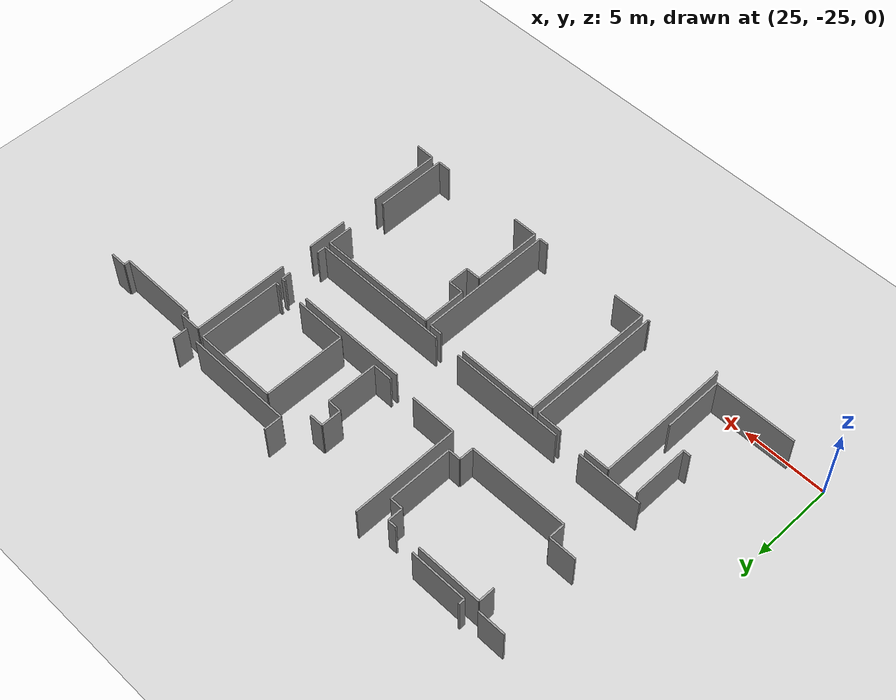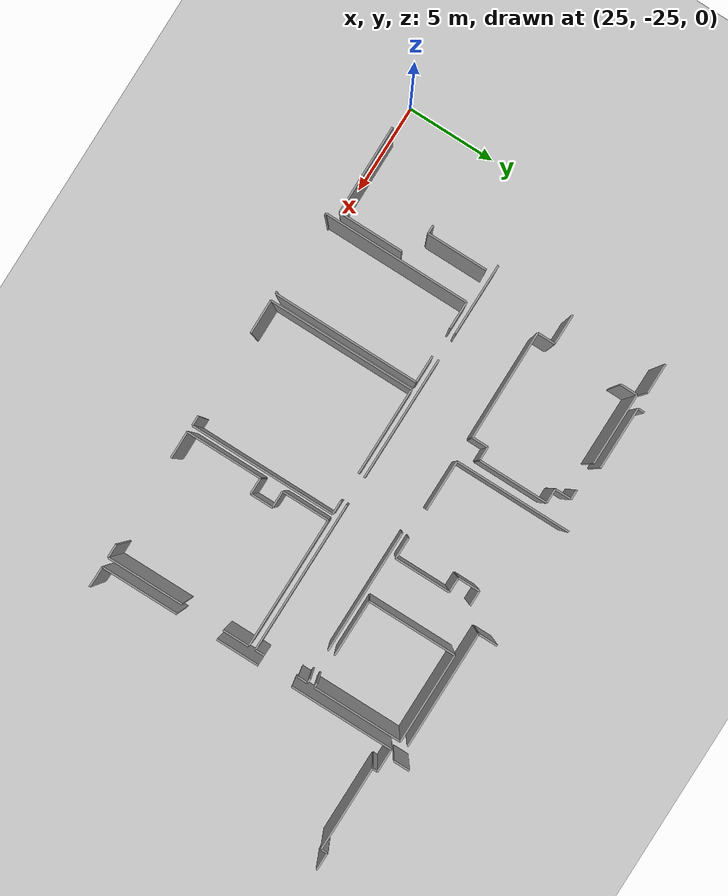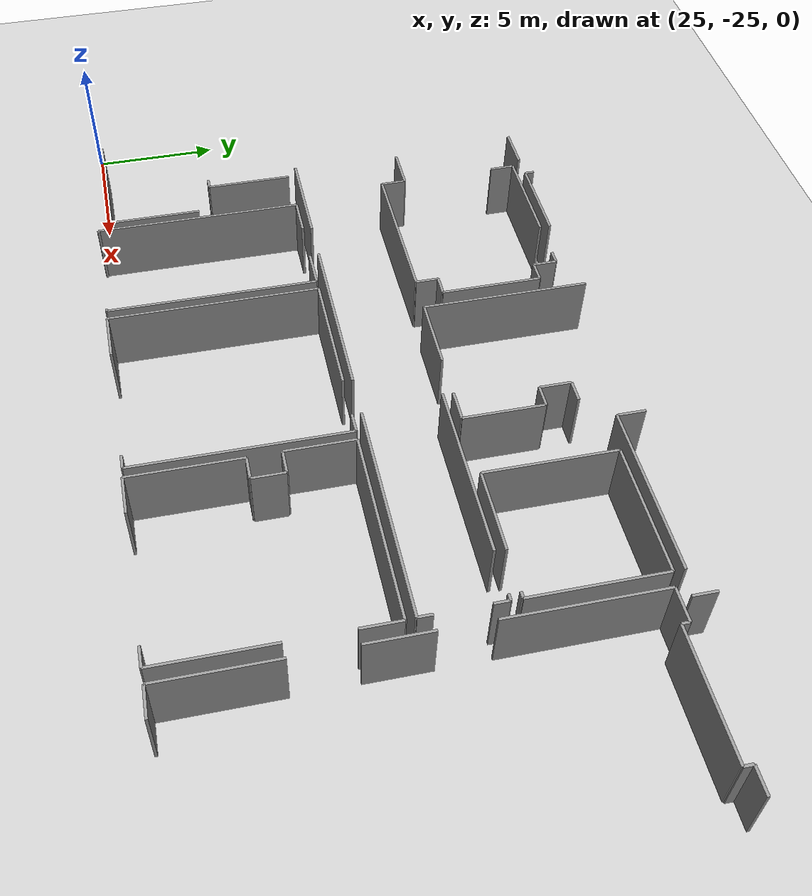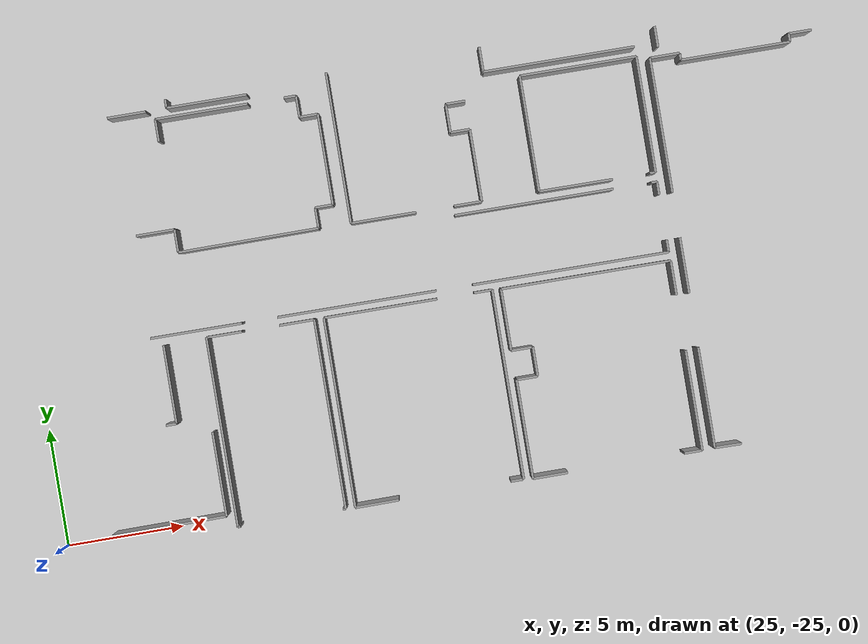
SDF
<sdf version="1.6">
 <world name="default">
  <model name="ground_plane">
   <static>1</static>
   <link name="link">
    <collision name="collision">
     <geometry><plane><normal>0 0 1</normal><size>100 100</size></plane></geometry>
     <surface><friction><ode><mu>100</mu><mu2>50</mu2></ode></friction></surface>
    </collision>
    <visual name="visual">
     <cast_shadows>0</cast_shadows>
     <geometry><plane><normal>0 0 1</normal><size>100 100</size></plane></geometry>
     <material>
      <script><uri>file://media/materials/scripts/gazebo.material</uri><name>Gazebo/Grey</name></script>
     </material>
    </visual>
   </link>
  </model>
  <model name="0510035342_A_40_1_101">
   <static>1</static>
   <link name="Wall_375">
    <collision name="Wall_375_Collision">
     <geometry><box><size>6.4992888347 0.1 2.5</size></box></geometry>
     <pose>3.24964441735 0 1.25 0 0 0</pose>
    </collision>
    <visual name="Wall_375_Visual">
     <pose>3.24964441735 0 1.25 0 0 0</pose>
     <geometry><box><size>6.4992888347 0.1 2.5</size></box></geometry>
     <material>
      <script><uri>file://media/materials/scripts/gazebo.material</uri><name>Gazebo/Grey</name></script>
      <ambient>1 1 1 1</ambient>
     </material>
    </visual>
    <pose>168.106268414 -33.2568830641 0 0 0 3.14159265359</pose>
   </link>
   <link name="Wall_376">
    <collision name="Wall_376_Collision">
     <geometry><box><size>1.07462155847 0.1 2.5</size></box></geometry>
     <pose>0.537310779234 0 1.25 0 0 0</pose>
    </collision>
    <visual name="Wall_376_Visual">
     <pose>0.537310779234 0 1.25 0 0 0</pose>
     <geometry><box><size>1.07462155847 0.1 2.5</size></box></geometry>
     <material>
      <script><uri>file://media/materials/scripts/gazebo.material</uri><name>Gazebo/Grey</name></script>
      <ambient>1 1 1 1</ambient>
     </material>
    </visual>
    <pose>161.606979579 -33.2568830641 0 0 0 1.57079632679</pose>
   </link>
   <link name="Wall_379">
    <collision name="Wall_379_Collision">
     <geometry><box><size>0.838413085441 0.1 2.5</size></box></geometry>
     <pose>0.419206542721 0 1.25 0 0 0</pose>
    </collision>
    <visual name="Wall_379_Visual">
     <pose>0.419206542721 0 1.25 0 0 0</pose>
     <geometry><box><size>0.838413085441 0.1 2.5</size></box></geometry>
     <material>
      <script><uri>file://media/materials/scripts/gazebo.material</uri><name>Gazebo/Grey</name></script>
      <ambient>1 1 1 1</ambient>
     </material>
    </visual>
    <pose>160.648430357 -34.3472518541 0 0 0 3.14159265359</pose>
   </link>
   <link name="Wall_380">
    <collision name="Wall_380_Collision">
     <geometry><box><size>1.2122828406 0.1 2.5</size></box></geometry>
     <pose>0.606141420299 0 1.25 0 0 0</pose>
    </collision>
    <visual name="Wall_380_Visual">
     <pose>0.606141420299 0 1.25 0 0 0</pose>
     <geometry><box><size>1.2122828406 0.1 2.5</size></box></geometry>
     <material>
      <script><uri>file://media/materials/scripts/gazebo.material</uri><name>Gazebo/Grey</name></script>
      <ambient>1 1 1 1</ambient>
     </material>
    </visual>
    <pose>159.810017271 -34.3472518541 0 0 0 -1.57079632679</pose>
   </link>
   <link name="Wall_381">
    <collision name="Wall_381_Collision">
     <geometry><box><size>0.833333333333 0.1 2.5</size></box></geometry>
     <pose>0.416666666667 0 1.25 0 0 0</pose>
    </collision>
    <visual name="Wall_381_Visual">
     <pose>0.416666666667 0 1.25 0 0 0</pose>
     <geometry><box><size>0.833333333333 0.1 2.5</size></box></geometry>
     <material>
      <script><uri>file://media/materials/scripts/gazebo.material</uri><name>Gazebo/Grey</name></script>
      <ambient>1 1 1 1</ambient>
     </material>
    </visual>
    <pose>159.810017271 -35.5595346947 0 0 0 0.0</pose>
   </link>
   <link name="Wall_382">
    <collision name="Wall_382_Collision">
     <geometry><box><size>3.09890277354 0.1 2.5</size></box></geometry>
     <pose>1.54945138677 0 1.25 0 0 0</pose>
    </collision>
    <visual name="Wall_382_Visual">
     <pose>1.54945138677 0 1.25 0 0 0</pose>
     <geometry><box><size>3.09890277354 0.1 2.5</size></box></geometry>
     <material>
      <script><uri>file://media/materials/scripts/gazebo.material</uri><name>Gazebo/Grey</name></script>
      <ambient>1 1 1 1</ambient>
     </material>
    </visual>
    <pose>160.643350604 -35.5595346947 0 0 0 -1.57079632679</pose>
   </link>
   <link name="Wall_383">
    <collision name="Wall_383_Collision">
     <geometry><box><size>1.18866199329 0.1 2.5</size></box></geometry>
     <pose>0.594330996647 0 1.25 0 0 0</pose>
    </collision>
    <visual name="Wall_383_Visual">
     <pose>0.594330996647 0 1.25 0 0 0</pose>
     <geometry><box><size>1.18866199329 0.1 2.5</size></box></geometry>
     <material>
      <script><uri>file://media/materials/scripts/gazebo.material</uri><name>Gazebo/Grey</name></script>
      <ambient>1 1 1 1</ambient>
     </material>
    </visual>
    <pose>160.643350604 -38.6584374683 0 0 0 3.14159265359</pose>
   </link>
   <link name="Wall_384">
    <collision name="Wall_384_Collision">
     <geometry><box><size>2.80021334959 0.1 2.5</size></box></geometry>
     <pose>1.40010667479 0 1.25 0 0 0</pose>
    </collision>
    <visual name="Wall_384_Visual">
     <pose>1.40010667479 0 1.25 0 0 0</pose>
     <geometry><box><size>2.80021334959 0.1 2.5</size></box></geometry>
     <material>
      <script><uri>file://media/materials/scripts/gazebo.material</uri><name>Gazebo/Grey</name></script>
      <ambient>1 1 1 1</ambient>
     </material>
    </visual>
    <pose>157.827136036 -38.6584374683 0 0 0 3.14159265359</pose>
   </link>
   <link name="Wall_385">
    <collision name="Wall_385_Collision">
     <geometry><box><size>6.4616986691 0.1 2.5</size></box></geometry>
     <pose>3.23084933455 0 1.25 0 0 0</pose>
    </collision>
    <visual name="Wall_385_Visual">
     <pose>3.23084933455 0 1.25 0 0 0</pose>
     <geometry><box><size>6.4616986691 0.1 2.5</size></box></geometry>
     <material>
      <script><uri>file://media/materials/scripts/gazebo.material</uri><name>Gazebo/Grey</name></script>
      <ambient>1 1 1 1</ambient>
     </material>
    </visual>
    <pose>155.026922686 -38.6584374683 0 0 0 1.57079632679</pose>
   </link>
   <link name="Wall_389">
    <collision name="Wall_389_Collision">
     <geometry><box><size>3.44788174337 0.1 2.5</size></box></geometry>
     <pose>1.72394087169 0 1.25 0 0 0</pose>
    </collision>
    <visual name="Wall_389_Visual">
     <pose>1.72394087169 0 1.25 0 0 0</pose>
     <geometry><box><size>3.44788174337 0.1 2.5</size></box></geometry>
     <material>
      <script><uri>file://media/materials/scripts/gazebo.material</uri><name>Gazebo/Grey</name></script>
      <ambient>1 1 1 1</ambient>
     </material>
    </visual>
    <pose>151.563039724 -32.5596870873 0 0 0 3.14159265359</pose>
   </link>
   <link name="Wall_390">
    <collision name="Wall_390_Collision">
     <geometry><box><size>0.367520065021 0.1 2.5</size></box></geometry>
     <pose>0.18376003251 0 1.25 0 0 0</pose>
    </collision>
    <visual name="Wall_390_Visual">
     <pose>0.18376003251 0 1.25 0 0 0</pose>
     <geometry><box><size>0.367520065021 0.1 2.5</size></box></geometry>
     <material>
      <script><uri>file://media/materials/scripts/gazebo.material</uri><name>Gazebo/Grey</name></script>
      <ambient>1 1 1 1</ambient>
     </material>
    </visual>
    <pose>148.11515798 -32.5596870873 0 0 0 1.57079632679</pose>
   </link>
   <link name="Wall_393">
    <collision name="Wall_393_Collision">
     <geometry><box><size>1.66006298893 0.1 2.5</size></box></geometry>
     <pose>0.830031494463 0 1.25 0 0 0</pose>
    </collision>
    <visual name="Wall_393_Visual">
     <pose>0.830031494463 0 1.25 0 0 0</pose>
     <geometry><box><size>1.66006298893 0.1 2.5</size></box></geometry>
     <material>
      <script><uri>file://media/materials/scripts/gazebo.material</uri><name>Gazebo/Grey</name></script>
      <ambient>1 1 1 1</ambient>
     </material>
    </visual>
    <pose>147.225693386 -32.5767042568 0 0 0 3.14159265359</pose>
   </link>
   <link name="Wall_397">
    <collision name="Wall_397_Collision">
     <geometry><box><size>0.979630194047 0.1 2.5</size></box></geometry>
     <pose>0.489815097023 0 1.25 0 0 0</pose>
    </collision>
    <visual name="Wall_397_Visual">
     <pose>0.489815097023 0 1.25 0 0 0</pose>
     <geometry><box><size>0.979630194047 0.1 2.5</size></box></geometry>
     <material>
      <script><uri>file://media/materials/scripts/gazebo.material</uri><name>Gazebo/Grey</name></script>
      <ambient>1 1 1 1</ambient>
     </material>
    </visual>
    <pose>147.604642893 -38.6777405263 0 0 0 1.57079632679</pose>
   </link>
   <link name="Wall_398">
    <collision name="Wall_398_Collision">
     <geometry><box><size>1.65168139795 0.1 2.5</size></box></geometry>
     <pose>0.825840698974 0 1.25 0 0 0</pose>
    </collision>
    <visual name="Wall_398_Visual">
     <pose>0.825840698974 0 1.25 0 0 0</pose>
     <geometry><box><size>1.65168139795 0.1 2.5</size></box></geometry>
     <material>
      <script><uri>file://media/materials/scripts/gazebo.material</uri><name>Gazebo/Grey</name></script>
      <ambient>1 1 1 1</ambient>
     </material>
    </visual>
    <pose>147.604642893 -37.6981103322 0 0 0 3.14159265359</pose>
   </link>
   <link name="Wall_401">
    <collision name="Wall_401_Collision">
     <geometry><box><size>0.96007314843 0.1 2.5</size></box></geometry>
     <pose>0.480036574215 0 1.25 0 0 0</pose>
    </collision>
    <visual name="Wall_401_Visual">
     <pose>0.480036574215 0 1.25 0 0 0</pose>
     <geometry><box><size>0.96007314843 0.1 2.5</size></box></geometry>
     <material>
      <script><uri>file://media/materials/scripts/gazebo.material</uri><name>Gazebo/Grey</name></script>
      <ambient>1 1 1 1</ambient>
     </material>
    </visual>
    <pose>147.566290765 -33.9147109621 0 0 0 1.57079632679</pose>
   </link>
   <link name="Wall_402">
    <collision name="Wall_402_Collision">
     <geometry><box><size>3.9754139998 0.1 2.5</size></box></geometry>
     <pose>1.9877069999 0 1.25 0 0 0</pose>
    </collision>
    <visual name="Wall_402_Visual">
     <pose>1.9877069999 0 1.25 0 0 0</pose>
     <geometry><box><size>3.9754139998 0.1 2.5</size></box></geometry>
     <material>
      <script><uri>file://media/materials/scripts/gazebo.material</uri><name>Gazebo/Grey</name></script>
      <ambient>1 1 1 1</ambient>
     </material>
    </visual>
    <pose>147.566290765 -32.9546378137 0 0 0 0.0</pose>
   </link>
   <link name="Wall_403">
    <collision name="Wall_403_Collision">
     <geometry><box><size>0.525754343188 0.1 2.5</size></box></geometry>
     <pose>0.262877171594 0 1.25 0 0 0</pose>
    </collision>
    <visual name="Wall_403_Visual">
     <pose>0.262877171594 0 1.25 0 0 0</pose>
     <geometry><box><size>0.525754343188 0.1 2.5</size></box></geometry>
     <material>
      <script><uri>file://media/materials/scripts/gazebo.material</uri><name>Gazebo/Grey</name></script>
      <ambient>1 1 1 1</ambient>
     </material>
    </visual>
    <pose>153.082901554 -32.9546378137 0 0 0 0.0</pose>
   </link>
   <link name="Wall_404">
    <collision name="Wall_404_Collision">
     <geometry><box><size>0.912323478614 0.1 2.5</size></box></geometry>
     <pose>0.456161739307 0 1.25 0 0 0</pose>
    </collision>
    <visual name="Wall_404_Visual">
     <pose>0.456161739307 0 1.25 0 0 0</pose>
     <geometry><box><size>0.912323478614 0.1 2.5</size></box></geometry>
     <material>
      <script><uri>file://media/materials/scripts/gazebo.material</uri><name>Gazebo/Grey</name></script>
      <ambient>1 1 1 1</ambient>
     </material>
    </visual>
    <pose>153.608655898 -32.9546378137 0 0 0 -1.57079632679</pose>
   </link>
   <link name="Wall_405">
    <collision name="Wall_405_Collision">
     <geometry><box><size>0.788631514782 0.1 2.5</size></box></geometry>
     <pose>0.394315757391 0 1.25 0 0 0</pose>
    </collision>
    <visual name="Wall_405_Visual">
     <pose>0.394315757391 0 1.25 0 0 0</pose>
     <geometry><box><size>0.788631514782 0.1 2.5</size></box></geometry>
     <material>
      <script><uri>file://media/materials/scripts/gazebo.material</uri><name>Gazebo/Grey</name></script>
      <ambient>1 1 1 1</ambient>
     </material>
    </visual>
    <pose>153.608655898 -33.8669612923 0 0 0 0.0</pose>
   </link>
   <link name="Wall_406">
    <collision name="Wall_406_Collision">
     <geometry><box><size>3.89261404043 0.1 2.5</size></box></geometry>
     <pose>1.94630702022 0 1.25 0 0 0</pose>
    </collision>
    <visual name="Wall_406_Visual">
     <pose>1.94630702022 0 1.25 0 0 0</pose>
     <geometry><box><size>3.89261404043 0.1 2.5</size></box></geometry>
     <material>
      <script><uri>file://media/materials/scripts/gazebo.material</uri><name>Gazebo/Grey</name></script>
      <ambient>1 1 1 1</ambient>
     </material>
    </visual>
    <pose>154.397287412 -33.8669612923 0 0 0 -1.57079632679</pose>
   </link>
   <link name="Wall_407">
    <collision name="Wall_407_Collision">
     <geometry><box><size>0.761200853398 0.1 2.5</size></box></geometry>
     <pose>0.380600426699 0 1.25 0 0 0</pose>
    </collision>
    <visual name="Wall_407_Visual">
     <pose>0.380600426699 0 1.25 0 0 0</pose>
     <geometry><box><size>0.761200853398 0.1 2.5</size></box></geometry>
     <material>
      <script><uri>file://media/materials/scripts/gazebo.material</uri><name>Gazebo/Grey</name></script>
      <ambient>1 1 1 1</ambient>
     </material>
    </visual>
    <pose>154.397287412 -37.7595753327 0 0 0 3.14159265359</pose>
   </link>
   <link name="Wall_408">
    <collision name="Wall_408_Collision">
     <geometry><box><size>0.883622879204 0.1 2.5</size></box></geometry>
     <pose>0.441811439602 0 1.25 0 0 0</pose>
    </collision>
    <visual name="Wall_408_Visual">
     <pose>0.441811439602 0 1.25 0 0 0</pose>
     <geometry><box><size>0.883622879204 0.1 2.5</size></box></geometry>
     <material>
      <script><uri>file://media/materials/scripts/gazebo.material</uri><name>Gazebo/Grey</name></script>
      <ambient>1 1 1 1</ambient>
     </material>
    </visual>
    <pose>153.636086559 -37.7595753327 0 0 0 -1.57079632679</pose>
   </link>
   <link name="Wall_409">
    <collision name="Wall_409_Collision">
     <geometry><box><size>6.03154257733 0.1 2.5</size></box></geometry>
     <pose>3.01577128867 0 1.25 0 0 0</pose>
    </collision>
    <visual name="Wall_409_Visual">
     <pose>3.01577128867 0 1.25 0 0 0</pose>
     <geometry><box><size>6.03154257733 0.1 2.5</size></box></geometry>
     <material>
      <script><uri>file://media/materials/scripts/gazebo.material</uri><name>Gazebo/Grey</name></script>
      <ambient>1 1 1 1</ambient>
     </material>
    </visual>
    <pose>153.636086559 -38.6431982119 0 0 0 -3.135865677</pose>
   </link>
   <link name="Wall_418">
    <collision name="Wall_418_Collision">
     <geometry><box><size>6.81067763893 0.1 2.5</size></box></geometry>
     <pose>3.40533881947 0 1.25 0 0 0</pose>
    </collision>
    <visual name="Wall_418_Visual">
     <pose>3.40533881947 0 1.25 0 0 0</pose>
     <geometry><box><size>6.81067763893 0.1 2.5</size></box></geometry>
     <material>
      <script><uri>file://media/materials/scripts/gazebo.material</uri><name>Gazebo/Grey</name></script>
      <ambient>1 1 1 1</ambient>
     </material>
    </visual>
    <pose>159.414050594 -39.051864269 0 0 0 0.0</pose>
   </link>
   <link name="Wall_419">
    <collision name="Wall_419_Collision">
     <geometry><box><size>0.249161840902 0.1 2.5</size></box></geometry>
     <pose>0.124580920451 0 1.25 0 0 0</pose>
    </collision>
    <visual name="Wall_419_Visual">
     <pose>0.124580920451 0 1.25 0 0 0</pose>
     <geometry><box><size>0.249161840902 0.1 2.5</size></box></geometry>
     <material>
      <script><uri>file://media/materials/scripts/gazebo.material</uri><name>Gazebo/Grey</name></script>
      <ambient>1 1 1 1</ambient>
     </material>
    </visual>
    <pose>167.850502895 -39.051864269 0 0 0 0.0</pose>
   </link>
   <link name="Wall_420">
    <collision name="Wall_420_Collision">
     <geometry><box><size>0.566392360053 0.1 2.5</size></box></geometry>
     <pose>0.283196180026 0 1.25 0 0 0</pose>
    </collision>
    <visual name="Wall_420_Visual">
     <pose>0.283196180026 0 1.25 0 0 0</pose>
     <geometry><box><size>0.566392360053 0.1 2.5</size></box></geometry>
     <material>
      <script><uri>file://media/materials/scripts/gazebo.material</uri><name>Gazebo/Grey</name></script>
      <ambient>1 1 1 1</ambient>
     </material>
    </visual>
    <pose>168.099664736 -39.051864269 0 0 0 -1.57079632679</pose>
   </link>
   <link name="Wall_421">
    <collision name="Wall_421_Collision">
     <geometry><box><size>0.537691760642 0.1 2.5</size></box></geometry>
     <pose>0.268845880321 0 1.25 0 0 0</pose>
    </collision>
    <visual name="Wall_421_Visual">
     <pose>0.268845880321 0 1.25 0 0 0</pose>
     <geometry><box><size>0.537691760642 0.1 2.5</size></box></geometry>
     <material>
      <script><uri>file://media/materials/scripts/gazebo.material</uri><name>Gazebo/Grey</name></script>
      <ambient>1 1 1 1</ambient>
     </material>
    </visual>
    <pose>168.099664736 -41.5391648888 0 0 0 -1.57079632679</pose>
   </link>
   <link name="Wall_422">
    <collision name="Wall_422_Collision">
     <geometry><box><size>8.41105354059 0.1 2.5</size></box></geometry>
     <pose>4.20552677029 0 1.25 0 0 0</pose>
    </collision>
    <visual name="Wall_422_Visual">
     <pose>4.20552677029 0 1.25 0 0 0</pose>
     <geometry><box><size>8.41105354059 0.1 2.5</size></box></geometry>
     <material>
      <script><uri>file://media/materials/scripts/gazebo.material</uri><name>Gazebo/Grey</name></script>
      <ambient>1 1 1 1</ambient>
     </material>
    </visual>
    <pose>168.099664736 -42.0768566494 0 0 0 3.14159265359</pose>
   </link>
   <link name="Wall_423">
    <collision name="Wall_423_Collision">
     <geometry><box><size>6.82998069694 0.1 2.5</size></box></geometry>
     <pose>3.41499034847 0 1.25 0 0 0</pose>
    </collision>
    <visual name="Wall_423_Visual">
     <pose>3.41499034847 0 1.25 0 0 0</pose>
     <geometry><box><size>6.82998069694 0.1 2.5</size></box></geometry>
     <material>
      <script><uri>file://media/materials/scripts/gazebo.material</uri><name>Gazebo/Grey</name></script>
      <ambient>1 1 1 1</ambient>
     </material>
    </visual>
    <pose>158.129381286 -42.0768566494 0 0 0 3.14159265359</pose>
   </link>
   <link name="Wall_424">
    <collision name="Wall_424_Collision">
     <geometry><box><size>3.92715635477 0.1 2.5</size></box></geometry>
     <pose>1.96357817738 0 1.25 0 0 0</pose>
    </collision>
    <visual name="Wall_424_Visual">
     <pose>1.96357817738 0 1.25 0 0 0</pose>
     <geometry><box><size>3.92715635477 0.1 2.5</size></box></geometry>
     <material>
      <script><uri>file://media/materials/scripts/gazebo.material</uri><name>Gazebo/Grey</name></script>
      <ambient>1 1 1 1</ambient>
     </material>
    </visual>
    <pose>149.77090318 -42.0768566494 0 0 0 3.14159265359</pose>
   </link>
   <link name="Wall_426">
    <collision name="Wall_426_Collision">
     <geometry><box><size>4.96266382201 0.1 2.5</size></box></geometry>
     <pose>2.481331911 0 1.25 0 0 0</pose>
    </collision>
    <visual name="Wall_426_Visual">
     <pose>2.481331911 0 1.25 0 0 0</pose>
     <geometry><box><size>4.96266382201 0.1 2.5</size></box></geometry>
     <material>
      <script><uri>file://media/materials/scripts/gazebo.material</uri><name>Gazebo/Grey</name></script>
      <ambient>1 1 1 1</ambient>
     </material>
    </visual>
    <pose>163.105760439 -38.6406583359 0 0 0 1.57079632679</pose>
   </link>
   <link name="Wall_427">
    <collision name="Wall_427_Collision">
     <geometry><box><size>5.00050797521 0.1 2.5</size></box></geometry>
     <pose>2.50025398761 0 1.25 0 0 0</pose>
    </collision>
    <visual name="Wall_427_Visual">
     <pose>2.50025398761 0 1.25 0 0 0</pose>
     <geometry><box><size>5.00050797521 0.1 2.5</size></box></geometry>
     <material>
      <script><uri>file://media/materials/scripts/gazebo.material</uri><name>Gazebo/Grey</name></script>
      <ambient>1 1 1 1</ambient>
     </material>
    </visual>
    <pose>163.105760439 -33.6779945139 0 0 0 0.0</pose>
   </link>
   <link name="Wall_428">
    <collision name="Wall_428_Collision">
     <geometry><box><size>4.97079142538 0.1 2.5</size></box></geometry>
     <pose>2.48539571269 0 1.25 0 0 0</pose>
    </collision>
    <visual name="Wall_428_Visual">
     <pose>2.48539571269 0 1.25 0 0 0</pose>
     <geometry><box><size>4.97079142538 0.1 2.5</size></box></geometry>
     <material>
      <script><uri>file://media/materials/scripts/gazebo.material</uri><name>Gazebo/Grey</name></script>
      <ambient>1 1 1 1</ambient>
     </material>
    </visual>
    <pose>168.106268414 -33.6779945139 0 0 0 -1.57079632679</pose>
   </link>
   <link name="Wall_429">
    <collision name="Wall_429_Collision">
     <geometry><box><size>0.249161840902 0.1 2.5</size></box></geometry>
     <pose>0.124580920451 0 1.25 0 0 0</pose>
    </collision>
    <visual name="Wall_429_Visual">
     <pose>0.124580920451 0 1.25 0 0 0</pose>
     <geometry><box><size>0.249161840902 0.1 2.5</size></box></geometry>
     <material>
      <script><uri>file://media/materials/scripts/gazebo.material</uri><name>Gazebo/Grey</name></script>
      <ambient>1 1 1 1</ambient>
     </material>
    </visual>
    <pose>168.106268414 -38.6487859392 0 0 0 3.14159265359</pose>
   </link>
   <link name="Wall_430">
    <collision name="Wall_430_Collision">
     <geometry><box><size>3.1535205824 0.1 2.5</size></box></geometry>
     <pose>1.5767602912 0 1.25 0 0 0</pose>
    </collision>
    <visual name="Wall_430_Visual">
     <pose>1.5767602912 0 1.25 0 0 0</pose>
     <geometry><box><size>3.1535205824 0.1 2.5</size></box></geometry>
     <material>
      <script><uri>file://media/materials/scripts/gazebo.material</uri><name>Gazebo/Grey</name></script>
      <ambient>1 1 1 1</ambient>
     </material>
    </visual>
    <pose>166.259270548 -38.6487859392 0 0 0 3.13901533971</pose>
   </link>
   <link name="Wall_434">
    <collision name="Wall_434_Collision">
     <geometry><box><size>3.36381184598 0.1 2.5</size></box></geometry>
     <pose>1.68190592299 0 1.25 0 0 0</pose>
    </collision>
    <visual name="Wall_434_Visual">
     <pose>1.68190592299 0 1.25 0 0 0</pose>
     <geometry><box><size>3.36381184598 0.1 2.5</size></box></geometry>
     <material>
      <script><uri>file://media/materials/scripts/gazebo.material</uri><name>Gazebo/Grey</name></script>
      <ambient>1 1 1 1</ambient>
     </material>
    </visual>
    <pose>146.344356395 -42.454282231 0 0 0 -1.57079632679</pose>
   </link>
   <link name="Wall_435">
    <collision name="Wall_435_Collision">
     <geometry><box><size>0.450066036777 0.1 2.5</size></box></geometry>
     <pose>0.225033018389 0 1.25 0 0 0</pose>
    </collision>
    <visual name="Wall_435_Visual">
     <pose>0.225033018389 0 1.25 0 0 0</pose>
     <geometry><box><size>0.450066036777 0.1 2.5</size></box></geometry>
     <material>
      <script><uri>file://media/materials/scripts/gazebo.material</uri><name>Gazebo/Grey</name></script>
      <ambient>1 1 1 1</ambient>
     </material>
    </visual>
    <pose>146.344356395 -45.818094077 0 0 0 3.14159265359</pose>
   </link>
   <link name="Wall_460">
    <collision name="Wall_460_Collision">
     <geometry><box><size>3.5997663314 0.1 2.5</size></box></geometry>
     <pose>1.7998831657 0 1.25 0 0 0</pose>
    </collision>
    <visual name="Wall_460_Visual">
     <pose>1.7998831657 0 1.25 0 0 0</pose>
     <geometry><box><size>3.5997663314 0.1 2.5</size></box></geometry>
     <material>
      <script><uri>file://media/materials/scripts/gazebo.material</uri><name>Gazebo/Grey</name></script>
      <ambient>1 1 1 1</ambient>
     </material>
    </visual>
    <pose>147.786498019 -46.4307121812 0 0 0 -1.57079632679</pose>
   </link>
   <link name="Wall_461">
    <collision name="Wall_461_Collision">
     <geometry><box><size>4.89829913292 0.1 2.5</size></box></geometry>
     <pose>2.44914956646 0 1.25 0 0 0</pose>
    </collision>
    <visual name="Wall_461_Visual">
     <pose>2.44914956646 0 1.25 0 0 0</pose>
     <geometry><box><size>4.89829913292 0.1 2.5</size></box></geometry>
     <material>
      <script><uri>file://media/materials/scripts/gazebo.material</uri><name>Gazebo/Grey</name></script>
      <ambient>1 1 1 1</ambient>
     </material>
    </visual>
    <pose>147.786498019 -50.0304785126 0 0 0 -3.13381474458</pose>
   </link>
   <link name="Wall_462">
    <collision name="Wall_462_Collision">
     <geometry><box><size>8.13801686478 0.1 2.5</size></box></geometry>
     <pose>4.06900843239 0 1.25 0 0 0</pose>
    </collision>
    <visual name="Wall_462_Visual">
     <pose>4.06900843239 0 1.25 0 0 0</pose>
     <geometry><box><size>8.13801686478 0.1 2.5</size></box></geometry>
     <material>
      <script><uri>file://media/materials/scripts/gazebo.material</uri><name>Gazebo/Grey</name></script>
      <ambient>1 1 1 1</ambient>
     </material>
    </visual>
    <pose>148.188814386 -50.5669003353 0 0 0 1.57079632679</pose>
   </link>
   <link name="Wall_463">
    <collision name="Wall_463_Collision">
     <geometry><box><size>1.51909986793 0.1 2.5</size></box></geometry>
     <pose>0.759549933963 0 1.25 0 0 0</pose>
    </collision>
    <visual name="Wall_463_Visual">
     <pose>0.759549933963 0 1.25 0 0 0</pose>
     <geometry><box><size>1.51909986793 0.1 2.5</size></box></geometry>
     <material>
      <script><uri>file://media/materials/scripts/gazebo.material</uri><name>Gazebo/Grey</name></script>
      <ambient>1 1 1 1</ambient>
     </material>
    </visual>
    <pose>148.188814386 -42.4288834705 0 0 0 0.0</pose>
   </link>
   <link name="Wall_464">
    <collision name="Wall_464_Collision">
     <geometry><box><size>1.49598699583 0.1 2.5</size></box></geometry>
     <pose>0.747993497917 0 1.25 0 0 0</pose>
    </collision>
    <visual name="Wall_464_Visual">
     <pose>0.747993497917 0 1.25 0 0 0</pose>
     <geometry><box><size>1.49598699583 0.1 2.5</size></box></geometry>
     <material>
      <script><uri>file://media/materials/scripts/gazebo.material</uri><name>Gazebo/Grey</name></script>
      <ambient>1 1 1 1</ambient>
     </material>
    </visual>
    <pose>151.325307325 -42.4288834705 0 0 0 0.0</pose>
   </link>
   <link name="Wall_465">
    <collision name="Wall_465_Collision">
     <geometry><box><size>8.12303159606 0.1 2.5</size></box></geometry>
     <pose>4.06151579803 0 1.25 0 0 0</pose>
    </collision>
    <visual name="Wall_465_Visual">
     <pose>4.06151579803 0 1.25 0 0 0</pose>
     <geometry><box><size>8.12303159606 0.1 2.5</size></box></geometry>
     <material>
      <script><uri>file://media/materials/scripts/gazebo.material</uri><name>Gazebo/Grey</name></script>
      <ambient>1 1 1 1</ambient>
     </material>
    </visual>
    <pose>152.821294321 -42.4288834705 0 0 0 -1.57079632679</pose>
   </link>
   <link name="Wall_466">
    <collision name="Wall_466_Collision">
     <geometry><box><size>0.116326323275 0.1 2.5</size></box></geometry>
     <pose>0.0581631616377 0 1.25 0 0 0</pose>
    </collision>
    <visual name="Wall_466_Visual">
     <pose>0.0581631616377 0 1.25 0 0 0</pose>
     <geometry><box><size>0.116326323275 0.1 2.5</size></box></geometry>
     <material>
      <script><uri>file://media/materials/scripts/gazebo.material</uri><name>Gazebo/Grey</name></script>
      <ambient>1 1 1 1</ambient>
     </material>
    </visual>
    <pose>152.821294321 -50.5519150665 0 0 0 3.14159265359</pose>
   </link>
   <link name="Wall_467">
    <collision name="Wall_467_Collision">
     <geometry><box><size>0.114013562148 0.1 2.5</size></box></geometry>
     <pose>0.0570067810739 0 1.25 0 0 0</pose>
    </collision>
    <visual name="Wall_467_Visual">
     <pose>0.0570067810739 0 1.25 0 0 0</pose>
     <geometry><box><size>0.114013562148 0.1 2.5</size></box></geometry>
     <material>
      <script><uri>file://media/materials/scripts/gazebo.material</uri><name>Gazebo/Grey</name></script>
      <ambient>1 1 1 1</ambient>
     </material>
    </visual>
    <pose>148.30183887 -50.5519150665 0 0 0 -3.00977717298</pose>
   </link>
   <link name="Wall_468">
    <collision name="Wall_468_Collision">
     <geometry><box><size>8.14436655491 0.1 2.5</size></box></geometry>
     <pose>4.07218327746 0 1.25 0 0 0</pose>
    </collision>
    <visual name="Wall_468_Visual">
     <pose>4.07218327746 0 1.25 0 0 0</pose>
     <geometry><box><size>8.14436655491 0.1 2.5</size></box></geometry>
     <material>
      <script><uri>file://media/materials/scripts/gazebo.material</uri><name>Gazebo/Grey</name></script>
      <ambient>1 1 1 1</ambient>
     </material>
    </visual>
    <pose>153.231484304 -50.5689322361 0 0 0 1.57079632679</pose>
   </link>
   <link name="Wall_469">
    <collision name="Wall_469_Collision">
     <geometry><box><size>4.87148227167 0.1 2.5</size></box></geometry>
     <pose>2.43574113583 0 1.25 0 0 0</pose>
    </collision>
    <visual name="Wall_469_Visual">
     <pose>2.43574113583 0 1.25 0 0 0</pose>
     <geometry><box><size>4.87148227167 0.1 2.5</size></box></geometry>
     <material>
      <script><uri>file://media/materials/scripts/gazebo.material</uri><name>Gazebo/Grey</name></script>
      <ambient>1 1 1 1</ambient>
     </material>
    </visual>
    <pose>153.231484304 -42.4245656812 0 0 0 0.0</pose>
   </link>
   <link name="Wall_470">
    <collision name="Wall_470_Collision">
     <geometry><box><size>0.783043787463 0.1 2.5</size></box></geometry>
     <pose>0.391521893732 0 1.25 0 0 0</pose>
    </collision>
    <visual name="Wall_470_Visual">
     <pose>0.391521893732 0 1.25 0 0 0</pose>
     <geometry><box><size>0.783043787463 0.1 2.5</size></box></geometry>
     <material>
      <script><uri>file://media/materials/scripts/gazebo.material</uri><name>Gazebo/Grey</name></script>
      <ambient>1 1 1 1</ambient>
     </material>
    </visual>
    <pose>159.683785431 -42.4245656812 0 0 0 0.0</pose>
   </link>
   <link name="Wall_471">
    <collision name="Wall_471_Collision">
     <geometry><box><size>8.12734938535 0.1 2.5</size></box></geometry>
     <pose>4.06367469268 0 1.25 0 0 0</pose>
    </collision>
    <visual name="Wall_471_Visual">
     <pose>4.06367469268 0 1.25 0 0 0</pose>
     <geometry><box><size>8.12734938535 0.1 2.5</size></box></geometry>
     <material>
      <script><uri>file://media/materials/scripts/gazebo.material</uri><name>Gazebo/Grey</name></script>
      <ambient>1 1 1 1</ambient>
     </material>
    </visual>
    <pose>160.466829219 -42.4245656812 0 0 0 -1.57079632679</pose>
   </link>
   <link name="Wall_472">
    <collision name="Wall_472_Collision">
     <geometry><box><size>0.558518744285 0.1 2.5</size></box></geometry>
     <pose>0.279259372143 0 1.25 0 0 0</pose>
    </collision>
    <visual name="Wall_472_Visual">
     <pose>0.279259372143 0 1.25 0 0 0</pose>
     <geometry><box><size>0.558518744285 0.1 2.5</size></box></geometry>
     <material>
      <script><uri>file://media/materials/scripts/gazebo.material</uri><name>Gazebo/Grey</name></script>
      <ambient>1 1 1 1</ambient>
     </material>
    </visual>
    <pose>160.466829219 -50.5519150665 0 0 0 3.14159265359</pose>
   </link>
   <link name="Wall_473">
    <collision name="Wall_473_Collision">
     <geometry><box><size>1.87831542966 0.1 2.5</size></box></geometry>
     <pose>0.93915771483 0 1.25 0 0 0</pose>
    </collision>
    <visual name="Wall_473_Visual">
     <pose>0.93915771483 0 1.25 0 0 0</pose>
     <geometry><box><size>1.87831542966 0.1 2.5</size></box></geometry>
     <material>
      <script><uri>file://media/materials/scripts/gazebo.material</uri><name>Gazebo/Grey</name></script>
      <ambient>1 1 1 1</ambient>
     </material>
    </visual>
    <pose>155.109722646 -50.5519150665 0 0 0 -3.13253272569</pose>
   </link>
   <link name="Wall_474">
    <collision name="Wall_474_Collision">
     <geometry><box><size>4.24057705984 0.1 2.5</size></box></geometry>
     <pose>2.12028852992 0 1.25 0 0 0</pose>
    </collision>
    <visual name="Wall_474_Visual">
     <pose>2.12028852992 0 1.25 0 0 0</pose>
     <geometry><box><size>4.24057705984 0.1 2.5</size></box></geometry>
     <material>
      <script><uri>file://media/materials/scripts/gazebo.material</uri><name>Gazebo/Grey</name></script>
      <ambient>1 1 1 1</ambient>
     </material>
    </visual>
    <pose>160.858224119 -50.591537133 0 0 0 1.57079632679</pose>
   </link>
   <link name="Wall_475">
    <collision name="Wall_475_Collision">
     <geometry><box><size>0.905465813268 0.1 2.5</size></box></geometry>
     <pose>0.452732906634 0 1.25 0 0 0</pose>
    </collision>
    <visual name="Wall_475_Visual">
     <pose>0.452732906634 0 1.25 0 0 0</pose>
     <geometry><box><size>0.905465813268 0.1 2.5</size></box></geometry>
     <material>
      <script><uri>file://media/materials/scripts/gazebo.material</uri><name>Gazebo/Grey</name></script>
      <ambient>1 1 1 1</ambient>
     </material>
    </visual>
    <pose>160.858224119 -46.3509600731 0 0 0 0.0</pose>
   </link>
   <link name="Wall_476">
    <collision name="Wall_476_Collision">
     <geometry><box><size>1.25876257239 0.1 2.5</size></box></geometry>
     <pose>0.629381286193 0 1.25 0 0 0</pose>
    </collision>
    <visual name="Wall_476_Visual">
     <pose>0.629381286193 0 1.25 0 0 0</pose>
     <geometry><box><size>1.25876257239 0.1 2.5</size></box></geometry>
     <material>
      <script><uri>file://media/materials/scripts/gazebo.material</uri><name>Gazebo/Grey</name></script>
      <ambient>1 1 1 1</ambient>
     </material>
    </visual>
    <pose>161.763689932 -46.3509600731 0 0 0 1.57079632679</pose>
   </link>
   <link name="Wall_477">
    <collision name="Wall_477_Collision">
     <geometry><box><size>0.927562734939 0.1 2.5</size></box></geometry>
     <pose>0.463781367469 0 1.25 0 0 0</pose>
    </collision>
    <visual name="Wall_477_Visual">
     <pose>0.463781367469 0 1.25 0 0 0</pose>
     <geometry><box><size>0.927562734939 0.1 2.5</size></box></geometry>
     <material>
      <script><uri>file://media/materials/scripts/gazebo.material</uri><name>Gazebo/Grey</name></script>
      <ambient>1 1 1 1</ambient>
     </material>
    </visual>
    <pose>161.763689932 -45.0921975008 0 0 0 3.14159265359</pose>
   </link>
   <link name="Wall_478">
    <collision name="Wall_478_Collision">
     <geometry><box><size>2.64299502184 0.1 2.5</size></box></geometry>
     <pose>1.32149751092 0 1.25 0 0 0</pose>
    </collision>
    <visual name="Wall_478_Visual">
     <pose>1.32149751092 0 1.25 0 0 0</pose>
     <geometry><box><size>2.64299502184 0.1 2.5</size></box></geometry>
     <material>
      <script><uri>file://media/materials/scripts/gazebo.material</uri><name>Gazebo/Grey</name></script>
      <ambient>1 1 1 1</ambient>
     </material>
    </visual>
    <pose>160.836127197 -45.0921975008 0 0 0 1.57079632679</pose>
   </link>
   <link name="Wall_479">
    <collision name="Wall_479_Collision">
     <geometry><box><size>7.29096820075 0.1 2.5</size></box></geometry>
     <pose>3.64548410038 0 1.25 0 0 0</pose>
    </collision>
    <visual name="Wall_479_Visual">
     <pose>3.64548410038 0 1.25 0 0 0</pose>
     <geometry><box><size>7.29096820075 0.1 2.5</size></box></geometry>
     <material>
      <script><uri>file://media/materials/scripts/gazebo.material</uri><name>Gazebo/Grey</name></script>
      <ambient>1 1 1 1</ambient>
     </material>
    </visual>
    <pose>160.836127197 -42.4492024789 0 0 0 0.0</pose>
   </link>
   <link name="Wall_480">
    <collision name="Wall_480_Collision">
     <geometry><box><size>1.48125571472 0.1 2.5</size></box></geometry>
     <pose>0.740627857361 0 1.25 0 0 0</pose>
    </collision>
    <visual name="Wall_480_Visual">
     <pose>0.740627857361 0 1.25 0 0 0</pose>
     <geometry><box><size>1.48125571472 0.1 2.5</size></box></geometry>
     <material>
      <script><uri>file://media/materials/scripts/gazebo.material</uri><name>Gazebo/Grey</name></script>
      <ambient>1 1 1 1</ambient>
     </material>
    </visual>
    <pose>168.127095398 -42.4492024789 0 0 0 -1.57079632679</pose>
   </link>
   <link name="Wall_481">
    <collision name="Wall_481_Collision">
     <geometry><box><size>4.28680280402 0.1 2.5</size></box></geometry>
     <pose>2.14340140201 0 1.25 0 0 0</pose>
    </collision>
    <visual name="Wall_481_Visual">
     <pose>2.14340140201 0 1.25 0 0 0</pose>
     <geometry><box><size>4.28680280402 0.1 2.5</size></box></geometry>
     <material>
      <script><uri>file://media/materials/scripts/gazebo.material</uri><name>Gazebo/Grey</name></script>
      <ambient>1 1 1 1</ambient>
     </material>
    </visual>
    <pose>168.127095398 -46.2996545769 0 0 0 -1.57079632679</pose>
   </link>
   <link name="Wall_482">
    <collision name="Wall_482_Collision">
     <geometry><box><size>0.765772630296 0.1 2.5</size></box></geometry>
     <pose>0.382886315148 0 1.25 0 0 0</pose>
    </collision>
    <visual name="Wall_482_Visual">
     <pose>0.382886315148 0 1.25 0 0 0</pose>
     <geometry><box><size>0.765772630296 0.1 2.5</size></box></geometry>
     <material>
      <script><uri>file://media/materials/scripts/gazebo.material</uri><name>Gazebo/Grey</name></script>
      <ambient>1 1 1 1</ambient>
     </material>
    </visual>
    <pose>168.127095398 -50.5864573809 0 0 0 3.14159265359</pose>
   </link>
   <link name="Wall_483">
    <collision name="Wall_483_Collision">
     <geometry><box><size>1.49878946776 0.1 2.5</size></box></geometry>
     <pose>0.74939473388 0 1.25 0 0 0</pose>
    </collision>
    <visual name="Wall_483_Visual">
     <pose>0.74939473388 0 1.25 0 0 0</pose>
     <geometry><box><size>1.49878946776 0.1 2.5</size></box></geometry>
     <material>
      <script><uri>file://media/materials/scripts/gazebo.material</uri><name>Gazebo/Grey</name></script>
      <ambient>1 1 1 1</ambient>
     </material>
    </visual>
    <pose>162.357004978 -50.5864573809 0 0 0 -3.13820341051</pose>
   </link>
   <link name="Wall_484">
    <collision name="Wall_484_Collision">
     <geometry><box><size>4.30635984964 0.1 2.5</size></box></geometry>
     <pose>2.15317992482 0 1.25 0 0 0</pose>
    </collision>
    <visual name="Wall_484_Visual">
     <pose>2.15317992482 0 1.25 0 0 0</pose>
     <geometry><box><size>4.30635984964 0.1 2.5</size></box></geometry>
     <material>
      <script><uri>file://media/materials/scripts/gazebo.material</uri><name>Gazebo/Grey</name></script>
      <ambient>1 1 1 1</ambient>
     </material>
    </visual>
    <pose>168.66885096 -50.565122422 0 0 0 1.57079632679</pose>
   </link>
   <link name="Wall_485">
    <collision name="Wall_485_Collision">
     <geometry><box><size>2.39916692065 0.1 2.5</size></box></geometry>
     <pose>1.19958346033 0 1.25 0 0 0</pose>
    </collision>
    <visual name="Wall_485_Visual">
     <pose>1.19958346033 0 1.25 0 0 0</pose>
     <geometry><box><size>2.39916692065 0.1 2.5</size></box></geometry>
     <material>
      <script><uri>file://media/materials/scripts/gazebo.material</uri><name>Gazebo/Grey</name></script>
      <ambient>1 1 1 1</ambient>
     </material>
    </visual>
    <pose>168.66885096 -43.9441735243 0 0 0 1.57079632679</pose>
   </link>
   <link name="Wall_486">
    <collision name="Wall_486_Collision">
     <geometry><box><size>5.77796403536 0.1 2.5</size></box></geometry>
     <pose>2.88898201768 0 1.25 0 0 0</pose>
    </collision>
    <visual name="Wall_486_Visual">
     <pose>2.88898201768 0 1.25 0 0 0</pose>
     <geometry><box><size>5.77796403536 0.1 2.5</size></box></geometry>
     <material>
      <script><uri>file://media/materials/scripts/gazebo.material</uri><name>Gazebo/Grey</name></script>
      <ambient>1 1 1 1</ambient>
     </material>
    </visual>
    <pose>168.66885096 -39.6172406787 0 0 0 1.57079632679</pose>
   </link>
   <link name="Wall_487">
    <collision name="Wall_487_Collision">
     <geometry><box><size>1.27552575434 0.1 2.5</size></box></geometry>
     <pose>0.637762877172 0 1.25 0 0 0</pose>
    </collision>
    <visual name="Wall_487_Visual">
     <pose>0.637762877172 0 1.25 0 0 0</pose>
     <geometry><box><size>1.27552575434 0.1 2.5</size></box></geometry>
     <material>
      <script><uri>file://media/materials/scripts/gazebo.material</uri><name>Gazebo/Grey</name></script>
      <ambient>1 1 1 1</ambient>
     </material>
    </visual>
    <pose>168.66885096 -33.8392766433 0 0 0 0.0</pose>
   </link>
   <link name="Wall_488">
    <collision name="Wall_488_Collision">
     <geometry><box><size>0.296657523113 0.1 2.5</size></box></geometry>
     <pose>0.148328761556 0 1.25 0 0 0</pose>
    </collision>
    <visual name="Wall_488_Visual">
     <pose>0.148328761556 0 1.25 0 0 0</pose>
     <geometry><box><size>0.296657523113 0.1 2.5</size></box></geometry>
     <material>
      <script><uri>file://media/materials/scripts/gazebo.material</uri><name>Gazebo/Grey</name></script>
      <ambient>1 1 1 1</ambient>
     </material>
    </visual>
    <pose>169.944376714 -33.8392766433 0 0 0 -1.57079632679</pose>
   </link>
   <link name="Wall_489">
    <collision name="Wall_489_Collision">
     <geometry><box><size>4.68886518338 0.1 2.5</size></box></geometry>
     <pose>2.34443259169 0 1.25 0 0 0</pose>
    </collision>
    <visual name="Wall_489_Visual">
     <pose>2.34443259169 0 1.25 0 0 0</pose>
     <geometry><box><size>4.68886518338 0.1 2.5</size></box></geometry>
     <material>
      <script><uri>file://media/materials/scripts/gazebo.material</uri><name>Gazebo/Grey</name></script>
      <ambient>1 1 1 1</ambient>
     </material>
    </visual>
    <pose>169.944376714 -34.1359341664 0 0 0 0.0</pose>
   </link>
   <link name="Wall_490">
    <collision name="Wall_490_Collision">
     <geometry><box><size>0.35151884588 0.1 2.5</size></box></geometry>
     <pose>0.17575942294 0 1.25 0 0 0</pose>
    </collision>
    <visual name="Wall_490_Visual">
     <pose>0.17575942294 0 1.25 0 0 0</pose>
     <geometry><box><size>0.35151884588 0.1 2.5</size></box></geometry>
     <material>
      <script><uri>file://media/materials/scripts/gazebo.material</uri><name>Gazebo/Grey</name></script>
      <ambient>1 1 1 1</ambient>
     </material>
    </visual>
    <pose>174.633241898 -34.1359341664 0 0 0 1.57079632679</pose>
   </link>
   <link name="Wall_491">
    <collision name="Wall_491_Collision">
     <geometry><box><size>0.977344305598 0.1 2.5</size></box></geometry>
     <pose>0.488672152799 0 1.25 0 0 0</pose>
    </collision>
    <visual name="Wall_491_Visual">
     <pose>0.488672152799 0 1.25 0 0 0</pose>
     <geometry><box><size>0.977344305598 0.1 2.5</size></box></geometry>
     <material>
      <script><uri>file://media/materials/scripts/gazebo.material</uri><name>Gazebo/Grey</name></script>
      <ambient>1 1 1 1</ambient>
     </material>
    </visual>
    <pose>174.633241898 -33.7844153205 0 0 0 0.0</pose>
   </link>
   <link name="Wall_520">
    <collision name="Wall_520_Collision">
     <geometry><box><size>1.15499603387 0.1 2.5</size></box></geometry>
     <pose>0.577498016935 0 1.25 0 0 0</pose>
    </collision>
    <visual name="Wall_520_Visual">
     <pose>0.577498016935 0 1.25 0 0 0</pose>
     <geometry><box><size>1.15499603387 0.1 2.5</size></box></geometry>
     <material>
      <script><uri>file://media/materials/scripts/gazebo.material</uri><name>Gazebo/Grey</name></script>
      <ambient>1 1 1 1</ambient>
     </material>
    </visual>
    <pose>169.823732602 -50.5813776288 0 0 0 3.12751836854</pose>
   </link>
   <link name="Wall_521">
    <collision name="Wall_521_Collision">
     <geometry><box><size>0.90038606116 0.1 2.5</size></box></geometry>
     <pose>0.45019303058 0 1.25 0 0 0</pose>
    </collision>
    <visual name="Wall_521_Visual">
     <pose>0.45019303058 0 1.25 0 0 0</pose>
     <geometry><box><size>0.90038606116 0.1 2.5</size></box></geometry>
     <material>
      <script><uri>file://media/materials/scripts/gazebo.material</uri><name>Gazebo/Grey</name></script>
      <ambient>1 1 1 1</ambient>
     </material>
    </visual>
    <pose>169.077009042 -33.4440719293 0 0 0 1.57079632679</pose>
   </link>
   <pose>-115.7 25.291537133 0 0 0 0</pose>
  </model>
 </world>
</sdf>
